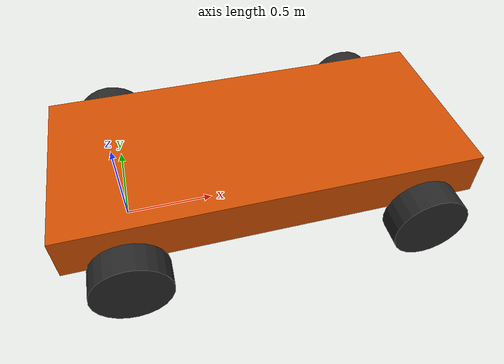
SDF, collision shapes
<?xml version="1.0" ?>
<sdf version="1.9">
  <model name="fsae_vehicle">

    <!-- ===== CHASSIS ===== -->
    <link name="chassis">
      <pose>0.7747 0 0.35 0 0 0</pose>
      <inertial>
        <mass>160.6</mass>
        <!-- solid box of the collision dimensions -->
        <inertia>
          <ixx>14.2198</ixx>
          <iyy>65.6118</iyy>
          <izz>78.1587</izz>
          <ixy>0</ixy><ixz>0</ixz><iyz>0</iyz>
        </inertia>
      </inertial>
      <visual name="body_visual">
        <!-- mesh scale/offset were fitted to a 1.6 m wheelbase; scaled with it -->
        <pose>-0.0678 -0.0194 0.0 0 0 0</pose>
        <geometry>
          <mesh>
            <uri>model://fsae_vehicle/meshes/carBody.stl</uri>
            <scale>1.6462 1.6462 1.6462</scale>
          </mesh>
        </geometry>
        <material>
          <ambient>0.8 0.3 0.0 1</ambient>
          <diffuse>0.8 0.3 0.0 1</diffuse>
        </material>
      </visual>
      <collision name="body_collision">
        <geometry>
          <box><size>2.2 1 0.25</size></box>
        </geometry>
      </collision>

      <!-- IMU sensor, at the chassis link origin -->
      <sensor name="imu_sensor" type="imu">
        <pose>0 0 0 0 0 0</pose>
        <always_on>true</always_on>
        <update_rate>100</update_rate>
        <visualize>false</visualize>
        <topic>/imu/data</topic>
      </sensor>

      <sensor name="lidar" type="gpu_lidar">
        <gz_frame_id>lidar</gz_frame_id>
        <pose>1.0253 0 0.27 0 0 0</pose>
        <always_on>true</always_on>
        <update_rate>10</update_rate>
        <visualize>true</visualize>
        <topic>/lidar/points</topic>
        <lidar>
          <scan>
            <horizontal>
              <samples>1800</samples>
              <resolution>1</resolution>
              <min_angle>-3.14159</min_angle>
              <max_angle>3.14159</max_angle>
            </horizontal>
            <vertical>
              <samples>16</samples>
              <resolution>1</resolution>
              <min_angle>-0.261799</min_angle>
              <max_angle>0.261799</max_angle>
            </vertical>
          </scan>
          <range>
            <min>0.9</min>
            <max>100.0</max>
            <resolution>0.003</resolution>
          </range>
        </lidar>
      </sensor>
    </link>

    <!-- ===== FRONT LEFT STEERING KNUCKLE ===== -->
    <link name="front_left_steering">
      <pose>1.5494 0.6061 0.2045 0 0 0</pose>
      <inertial>
        <mass>0.1</mass>
        <inertia>
          <ixx>0.0001</ixx><iyy>0.0001</iyy><izz>0.0001</izz>
          <ixy>0</ixy><ixz>0</ixz><iyz>0</iyz>
        </inertia>
      </inertial>
    </link>

    <joint name="front_left_steering_joint" type="revolute">
      <parent>chassis</parent>
      <child>front_left_steering</child>
      <axis>
        <xyz>0 0 1</xyz>
        <limit>
          <lower>-0.6787</lower>
          <upper>0.6787</upper>
          <effort>1e6</effort>
          <velocity>10</velocity>
        </limit>
      </axis>
    </joint>

    <!-- FRONT LEFT WHEEL (links are rolled -90° about x: the spin axis is link-local z) -->
    <link name="front_left_wheel">
      <pose>1.5494 0.6061 0.2045 -1.5708 0 0</pose>
      <inertial>
        <mass>8.5</mass>
        <inertia>
          <ixx>0.1048</ixx><iyy>0.1048</iyy><izz>0.1777</izz>
          <ixy>0</ixy><ixz>0</ixz><iyz>0</iyz>
        </inertia>
      </inertial>
      <visual name="visual">
        <pose>-0.6033 -0.2045 -0.6237 1.5708 0 0</pose>
        <geometry>
          <mesh>
            <uri>model://fsae_vehicle/meshes/carTire.stl</uri>
            <scale>2.2188 2.2188 2.2188</scale>
          </mesh>
        </geometry>
        <material>
          <ambient>0.15 0.15 0.15 1</ambient>
          <diffuse>0.15 0.15 0.15 1</diffuse>
        </material>
      </visual>
      <collision name="collision">
        <geometry>
          <cylinder><radius>0.2045</radius><length>0.15</length></cylinder>
        </geometry>
        <surface>
          <friction>
            <ode><mu>1.0</mu><mu2>0.8</mu2></ode>
          </friction>
        </surface>
      </collision>
    </link>

    <joint name="front_left_wheel_joint" type="revolute">
      <parent>front_left_steering</parent>
      <child>front_left_wheel</child>
      <axis>
        <xyz>0 0 1</xyz>
        <limit><lower>-1e16</lower><upper>1e16</upper><effort>1e6</effort></limit>
      </axis>
    </joint>

    <!-- ===== FRONT RIGHT STEERING KNUCKLE ===== -->
    <link name="front_right_steering">
      <pose>1.5494 -0.6061 0.2045 0 0 0</pose>
      <inertial>
        <mass>0.1</mass>
        <inertia>
          <ixx>0.0001</ixx><iyy>0.0001</iyy><izz>0.0001</izz>
          <ixy>0</ixy><ixz>0</ixz><iyz>0</iyz>
        </inertia>
      </inertial>
    </link>

    <joint name="front_right_steering_joint" type="revolute">
      <parent>chassis</parent>
      <child>front_right_steering</child>
      <axis>
        <xyz>0 0 1</xyz>
        <limit>
          <lower>-0.6787</lower>
          <upper>0.6787</upper>
          <effort>1e6</effort>
          <velocity>10</velocity>
        </limit>
      </axis>
    </joint>

    <!-- FRONT RIGHT WHEEL -->
    <link name="front_right_wheel">
      <pose>1.5494 -0.6061 0.2045 -1.5708 0 0</pose>
      <inertial>
        <mass>8.5</mass>
        <inertia>
          <ixx>0.1048</ixx><iyy>0.1048</iyy><izz>0.1777</izz>
          <ixy>0</ixy><ixz>0</ixz><iyz>0</iyz>
        </inertia>
      </inertial>
      <visual name="visual">
        <pose>-0.6033 -0.2045 -0.6237 1.5708 0 0</pose>
        <geometry>
          <mesh>
            <uri>model://fsae_vehicle/meshes/carTire.stl</uri>
            <scale>2.2188 2.2188 2.2188</scale>
          </mesh>
        </geometry>
        <material>
          <ambient>0.15 0.15 0.15 1</ambient>
          <diffuse>0.15 0.15 0.15 1</diffuse>
        </material>
      </visual>
      <collision name="collision">
        <geometry>
          <cylinder><radius>0.2045</radius><length>0.15</length></cylinder>
        </geometry>
        <surface>
          <friction>
            <ode><mu>1.0</mu><mu2>0.8</mu2></ode>
          </friction>
        </surface>
      </collision>
    </link>

    <joint name="front_right_wheel_joint" type="revolute">
      <parent>front_right_steering</parent>
      <child>front_right_wheel</child>
      <axis>
        <xyz>0 0 1</xyz>
        <limit><lower>-1e16</lower><upper>1e16</upper><effort>1e6</effort></limit>
      </axis>
    </joint>

    <!-- ===== REAR LEFT WHEEL (no steering knuckle) ===== -->
    <link name="rear_left_wheel">
      <pose>0 0.6061 0.2045 -1.5708 0 0</pose>
      <inertial>
        <mass>8.5</mass>
        <inertia>
          <ixx>0.1048</ixx><iyy>0.1048</iyy><izz>0.1777</izz>
          <ixy>0</ixy><ixz>0</ixz><iyz>0</iyz>
        </inertia>
      </inertial>
      <visual name="visual">
        <pose>-0.6033 -0.2045 -0.6237 1.5708 0 0</pose>
        <geometry>
          <mesh>
            <uri>model://fsae_vehicle/meshes/carTire.stl</uri>
            <scale>2.2188 2.2188 2.2188</scale>
          </mesh>
        </geometry>
        <material>
          <ambient>0.15 0.15 0.15 1</ambient>
          <diffuse>0.15 0.15 0.15 1</diffuse>
        </material>
      </visual>
      <collision name="collision">
        <geometry>
          <cylinder><radius>0.2045</radius><length>0.15</length></cylinder>
        </geometry>
        <surface>
          <friction>
            <ode><mu>1.0</mu><mu2>0.8</mu2></ode>
          </friction>
        </surface>
      </collision>
    </link>

    <joint name="rear_left_wheel_joint" type="revolute">
      <parent>chassis</parent>
      <child>rear_left_wheel</child>
      <axis>
        <xyz>0 0 1</xyz>
        <limit><lower>-1e16</lower><upper>1e16</upper><effort>1e6</effort></limit>
      </axis>
    </joint>

    <!-- ===== REAR RIGHT WHEEL (no steering knuckle) ===== -->
    <link name="rear_right_wheel">
      <pose>0 -0.6061 0.2045 -1.5708 0 0</pose>
      <inertial>
        <mass>8.5</mass>
        <inertia>
          <ixx>0.1048</ixx><iyy>0.1048</iyy><izz>0.1777</izz>
          <ixy>0</ixy><ixz>0</ixz><iyz>0</iyz>
        </inertia>
      </inertial>
      <visual name="visual">
        <pose>-0.6033 -0.2045 -0.6237 1.5708 0 0</pose>
        <geometry>
          <mesh>
            <uri>model://fsae_vehicle/meshes/carTire.stl</uri>
            <scale>2.2188 2.2188 2.2188</scale>
          </mesh>
        </geometry>
        <material>
          <ambient>0.15 0.15 0.15 1</ambient>
          <diffuse>0.15 0.15 0.15 1</diffuse>
        </material>
      </visual>
      <collision name="collision">
        <geometry>
          <cylinder><radius>0.2045</radius><length>0.15</length></cylinder>
        </geometry>
        <surface>
          <friction>
            <ode><mu>1.0</mu><mu2>0.8</mu2></ode>
          </friction>
        </surface>
      </collision>
    </link>

    <joint name="rear_right_wheel_joint" type="revolute">
      <parent>chassis</parent>
      <child>rear_right_wheel</child>
      <axis>
        <xyz>0 0 1</xyz>
        <limit><lower>-1e16</lower><upper>1e16</upper><effort>1e6</effort></limit>
      </axis>
    </joint>

    <!-- ===== STEERING: direct position control (bypasses physics solver) ===== -->
    <plugin
      filename="gz-sim-joint-position-controller-system"
      name="gz::sim::systems::JointPositionController">
      <joint_name>front_left_steering_joint</joint_name>
      <topic>/model/fsae_vehicle/joint/front_left_steering_joint/cmd_pos</topic>
      <use_velocity_commands>true</use_velocity_commands>
      <!-- velocity the controller may command to reach the target; a sim
           tuning knob kept high for near-instant response, distinct from the
           joint's physical rate limit above -->
      <cmd_max>10.0</cmd_max>
      <cmd_min>-10.0</cmd_min>
    </plugin>

    <plugin
      filename="gz-sim-joint-position-controller-system"
      name="gz::sim::systems::JointPositionController">
      <joint_name>front_right_steering_joint</joint_name>
      <topic>/model/fsae_vehicle/joint/front_right_steering_joint/cmd_pos</topic>
      <use_velocity_commands>true</use_velocity_commands>
      <!-- velocity the controller may command to reach the target; a sim
           tuning knob kept high for near-instant response, distinct from the
           joint's physical rate limit above -->
      <cmd_max>10.0</cmd_max>
      <cmd_min>-10.0</cmd_min>
    </plugin>

    <!-- ===== DRIVE: direct velocity control ===== -->
    <plugin
      filename="gz-sim-joint-controller-system"
      name="gz::sim::systems::JointController">
      <joint_name>front_left_wheel_joint</joint_name>
      <topic>/model/fsae_vehicle/joint/front_left_wheel_joint/cmd_vel</topic>
    </plugin>

    <plugin
      filename="gz-sim-joint-controller-system"
      name="gz::sim::systems::JointController">
      <joint_name>front_right_wheel_joint</joint_name>
      <topic>/model/fsae_vehicle/joint/front_right_wheel_joint/cmd_vel</topic>
    </plugin>

    <plugin
      filename="gz-sim-joint-controller-system"
      name="gz::sim::systems::JointController">
      <joint_name>rear_left_wheel_joint</joint_name>
      <topic>/model/fsae_vehicle/joint/rear_left_wheel_joint/cmd_vel</topic>
    </plugin>

    <plugin
      filename="gz-sim-joint-controller-system"
      name="gz::sim::systems::JointController">
      <joint_name>rear_right_wheel_joint</joint_name>
      <topic>/model/fsae_vehicle/joint/rear_right_wheel_joint/cmd_vel</topic>
    </plugin>

    <!-- ===== GROUND-TRUTH ODOMETRY (world-frame pose, not wheel encoders) ===== -->
    <plugin
      filename="gz-sim-odometry-publisher-system"
      name="gz::sim::systems::OdometryPublisher">
      <odom_topic>/model/fsae_vehicle/odometry</odom_topic>
      <odom_frame>map</odom_frame>
      <robot_base_frame>base_link</robot_base_frame>
      <odom_publish_frequency>50</odom_publish_frequency>
    </plugin>

  </model>
</sdf>
